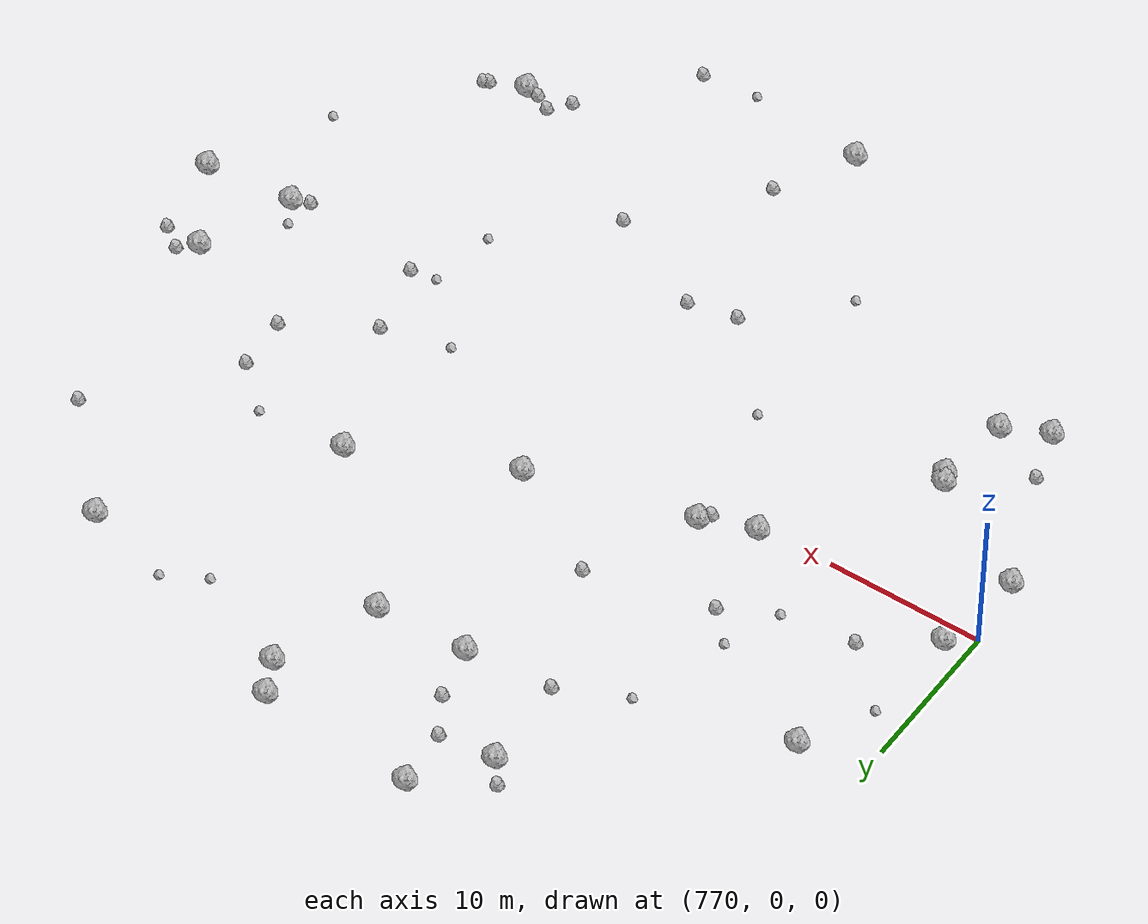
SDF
<sdf version="1.6">
 <world name="default">
  <include><uri>model://sun</uri></include>
  <model name="rock1_20_4">
   <include><uri>model://rock1</uri><pose>793.1800975750866 17.524224744173146 0.5 0 0 0</pose></include>
  </model>
  <model name="rock1_20_5">
   <include><uri>model://rock1</uri><pose>790.3081772204564 27.092426325878186 0.5 0 0 0</pose></include>
  </model>
  <model name="rock1_20_6">
   <include><uri>model://rock1</uri><pose>770.791571707505 -4.555011628419159 0.5 0 0 0</pose></include>
  </model>
  <model name="rock1_20_7">
   <include><uri>model://rock1</uri><pose>778.14879317766 -8.862276420993325 0.5 0 0 0</pose></include>
  </model>
  <model name="rock1_20_8">
   <include><uri>model://rock1</uri><pose>816.6402078482976 21.41615382775509 0.5 0 0 0</pose></include>
  </model>
  <model name="rock1_20_9">
   <include><uri>model://rock1</uri><pose>822.7532722238734 -5.283038738985237 0.5 0 0 0</pose></include>
  </model>
  <model name="rock1_20_10">
   <include><uri>model://rock1</uri><pose>808.0800060928532 9.059999647726386 0.5 0 0 0</pose></include>
  </model>
  <model name="rock1_20_11">
   <include><uri>model://rock1</uri><pose>801.5971904746712 24.361653599082487 0.5 0 0 0</pose></include>
  </model>
  <model name="rock1_20_12">
   <include><uri>model://rock1</uri><pose>828.6806160422002 -4.7372044529526995 0.5 0 0 0</pose></include>
  </model>
  <model name="rock1_20_13">
   <include><uri>model://rock1</uri><pose>787.2063872265021 22.92928792986976 0.5 0 0 0</pose></include>
  </model>
  <model name="rock1_20_14">
   <include><uri>model://rock1</uri><pose>800.4234029265417 26.54413778130791 0.5 0 0 0</pose></include>
  </model>
  <model name="rock1_20_15">
   <include><uri>model://rock1</uri><pose>799.1208668583158 17.834453864992497 0.5 0 0 0</pose></include>
  </model>
  <model name="rock1_20_16">
   <include><uri>model://rock1</uri><pose>797.0504979673286 -28.13206712009753 0.5 0 0 0</pose></include>
  </model>
  <model name="rock1_20_17">
   <include><uri>model://rock1</uri><pose>774.1500570295765 12.291499843409518 0.5 0 0 0</pose></include>
  </model>
  <model name="rock1_20_18">
   <include><uri>model://rock1</uri><pose>778.4535454712372 -9.424403849489412 0.5 0 0 0</pose></include>
  </model>
  <model name="rock1_20_19">
   <include><uri>model://rock1</uri><pose>798.5129487926816 4.560986265390184 0.5 0 0 0</pose></include>
  </model>
  <model name="rock1_20_20">
   <include><uri>model://rock1</uri><pose>784.8347186133745 0.4597167421870978 0.5 0 0 0</pose></include>
  </model>
  <model name="rock1_20_21">
   <include><uri>model://rock1</uri><pose>775.0538671306305 -15.620569802756597 0.5 0 0 0</pose></include>
  </model>
  <model name="rock1_20_22">
   <include><uri>model://rock1</uri><pose>824.967009874454 0.8823691837456309 0.5 0 0 0</pose></include>
  </model>
  <model name="rock1_20_23">
   <include><uri>model://rock1</uri><pose>788.1434729025018 1.766550352407613 0.5 0 0 0</pose></include>
  </model>
  <model name="rock1_20_24">
   <include><uri>model://rock1</uri><pose>816.8106102610361 -21.41376453972484 0.5 0 0 0</pose></include>
  </model>
  <model name="rock1_20_25">
   <include><uri>model://rock1</uri><pose>771.5940147013386 1.2820388537412555 0.5 0 0 0</pose></include>
  </model>
  <model name="rock1_20_26">
   <include><uri>model://rock1</uri><pose>777.8219091847478 -14.274695101982386 0.5 0 0 0</pose></include>
  </model>
  <model name="rock2_20_0">
   <include><uri>model://rock2</uri><pose>813.7002218915753 -21.944446507497652 0.3 0 0 0</pose></include>
  </model>
  <model name="rock2_20_1">
   <include><uri>model://rock2</uri><pose>792.2537755110972 20.91305529585378 0.3 0 0 0</pose></include>
  </model>
  <model name="rock2_20_2">
   <include><uri>model://rock2</uri><pose>821.6078787858727 -5.787218314034153 0.3 0 0 0</pose></include>
  </model>
  <model name="rock2_20_3">
   <include><uri>model://rock2</uri><pose>813.3601385977464 -4.758149807667522 0.3 0 0 0</pose></include>
  </model>
  <model name="rock2_20_4">
   <include><uri>model://rock2</uri><pose>799.5483748673889 -22.933505020870683 0.3 0 0 0</pose></include>
  </model>
  <model name="rock2_20_5">
   <include><uri>model://rock2</uri><pose>787.6190515321254 1.0110663222299152 0.3 0 0 0</pose></include>
  </model>
  <model name="rock2_20_6">
   <include><uri>model://rock2</uri><pose>814.711380393158 -20.646283916958208 0.3 0 0 0</pose></include>
  </model>
  <model name="rock2_20_7">
   <include><uri>model://rock2</uri><pose>808.5779260267252 -28.654528962530307 0.3 0 0 0</pose></include>
  </model>
  <model name="rock2_20_8">
   <include><uri>model://rock2</uri><pose>798.3683194644678 -12.108711388243158 0.3 0 0 0</pose></include>
  </model>
  <model name="rock2_20_9">
   <include><uri>model://rock2</uri><pose>812.0092450847994 0.11543730163733557 0.3 0 0 0</pose></include>
  </model>
  <model name="rock2_20_10">
   <include><uri>model://rock2</uri><pose>805.3903536257951 -15.51076675233981 0.3 0 0 0</pose></include>
  </model>
  <model name="rock2_20_11">
   <include><uri>model://rock2</uri><pose>822.9586369409069 14.980624562468279 0.3 0 0 0</pose></include>
  </model>
  <model name="rock2_20_12">
   <include><uri>model://rock2</uri><pose>818.9671416570853 -20.527741657075723 0.3 0 0 0</pose></include>
  </model>
  <model name="rock2_20_13">
   <include><uri>model://rock2</uri><pose>791.2410766808971 8.75077693840558 0.3 0 0 0</pose></include>
  </model>
  <model name="rock2_20_14">
   <include><uri>model://rock2</uri><pose>827.4383273357788 0.7644472657735051 0.3 0 0 0</pose></include>
  </model>
  <model name="rock2_20_15">
   <include><uri>model://rock2</uri><pose>787.5989619336152 16.911054612583648 0.3 0 0 0</pose></include>
  </model>
  <model name="rock2_20_16">
   <include><uri>model://rock2</uri><pose>817.1476321590026 3.3492105493065125 0.3 0 0 0</pose></include>
  </model>
  <model name="rock2_20_17">
   <include><uri>model://rock2</uri><pose>790.7140412043937 23.355820370611674 0.3 0 0 0</pose></include>
  </model>
  <model name="rock2_20_18">
   <include><uri>model://rock2</uri><pose>815.8251218979201 -21.272110516831596 0.3 0 0 0</pose></include>
  </model>
  <model name="rock2_20_19">
   <include><uri>model://rock2</uri><pose>795.231184982884 -12.804083686426353 0.3 0 0 0</pose></include>
  </model>
  <model name="rock2_20_20">
   <include><uri>model://rock2</uri><pose>825.9406440565699 1.8468140398736992 0.3 0 0 0</pose></include>
  </model>
  <model name="rock2_20_21">
   <include><uri>model://rock2</uri><pose>783.4027626313259 6.723769054847253 0.3 0 0 0</pose></include>
  </model>
  <model name="rock2_20_22">
   <include><uri>model://rock2</uri><pose>775.5207417646226 4.280836792653048 0.3 0 0 0</pose></include>
  </model>
  <model name="rock2_20_23">
   <include><uri>model://rock2</uri><pose>816.7465774193768 6.96918609250573 0.3 0 0 0</pose></include>
  </model>
  <model name="rock2_20_24">
   <include><uri>model://rock2</uri><pose>785.9546899431554 24.372766883056457 0.3 0 0 0</pose></include>
  </model>
  <model name="rock2_20_25">
   <include><uri>model://rock2</uri><pose>819.2815087501592 -20.35890612790748 0.3 0 0 0</pose></include>
  </model>
  <model name="rock2_20_26">
   <include><uri>model://rock2</uri><pose>773.9483406644009 -12.231913060112937 0.3 0 0 0</pose></include>
  </model>
  <model name="rock3_20_0">
   <include><uri>model://rock3</uri><pose>771.859273336835 7.739574518046318 0.2 0 0 0</pose></include>
  </model>
  <model name="rock3_20_1">
   <include><uri>model://rock3</uri><pose>790.3018411854429 -18.108717635495353 0.2 0 0 0</pose></include>
  </model>
  <model name="rock3_20_2">
   <include><uri>model://rock3</uri><pose>808.1591315360905 21.482123631109104 0.2 0 0 0</pose></include>
  </model>
  <model name="rock3_20_3">
   <include><uri>model://rock3</uri><pose>781.5295836239002 8.55815219364932 0.2 0 0 0</pose></include>
  </model>
  <model name="rock3_20_4">
   <include><uri>model://rock3</uri><pose>789.8881474242294 -7.108372354361794 0.2 0 0 0</pose></include>
  </model>
  <model name="rock3_20_5">
   <include><uri>model://rock3</uri><pose>807.6443902417819 -1.084444085751425 0.2 0 0 0</pose></include>
  </model>
  <model name="rock3_20_6">
   <include><uri>model://rock3</uri><pose>813.783347222188 9.498904764311177 0.2 0 0 0</pose></include>
  </model>
  <model name="rock3_20_7">
   <include><uri>model://rock3</uri><pose>821.6801380575859 -3.7000791230134134 0.2 0 0 0</pose></include>
  </model>
  <model name="rock3_20_8">
   <include><uri>model://rock3</uri><pose>810.7217535227929 22.93580987823286 0.2 0 0 0</pose></include>
  </model>
  <model name="rock3_20_9">
   <include><uri>model://rock3</uri><pose>804.822986782133 -29.06535222359095 0.2 0 0 0</pose></include>
  </model>
  <model name="rock3_20_10">
   <include><uri>model://rock3</uri><pose>783.4630611486217 14.841730778338835 0.2 0 0 0</pose></include>
  </model>
  <model name="rock3_20_11">
   <include><uri>model://rock3</uri><pose>811.1275019292389 -9.63376929965014 0.2 0 0 0</pose></include>
  </model>
  <model name="rock3_20_12">
   <include><uri>model://rock3</uri><pose>780.1681728999436 4.913945735769055 0.2 0 0 0</pose></include>
  </model>
  <model name="rock3_20_13">
   <include><uri>model://rock3</uri><pose>811.6541041670893 -5.092123754695482 0.2 0 0 0</pose></include>
  </model>
  <model name="rock3_20_14">
   <include><uri>model://rock3</uri><pose>825.0116138942519 -12.646514991105459 0.2 0 0 0</pose></include>
  </model>
 </world>
</sdf>
